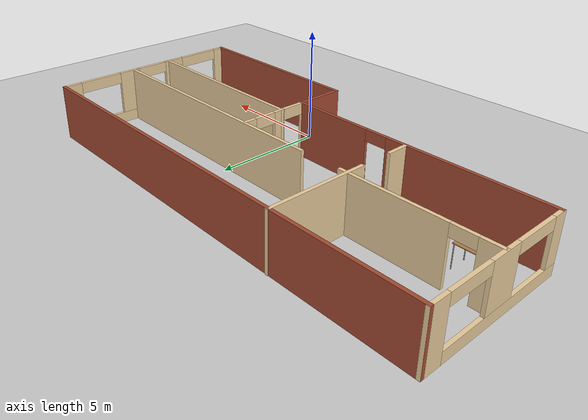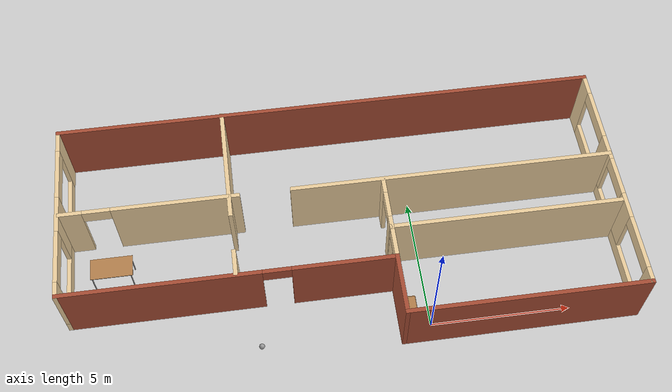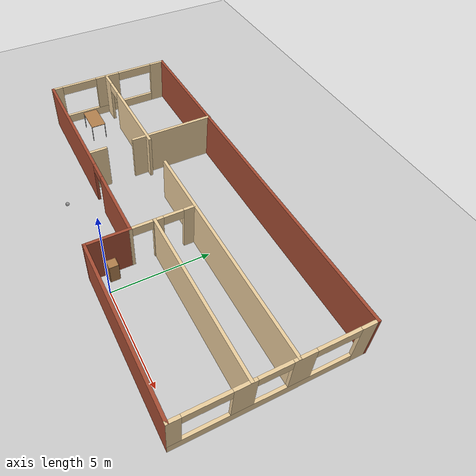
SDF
<sdf version="1.6">
 <world name="default">
  <plugin name="hello" filename="libhello.so"/>
  <light name="sun" type="directional">
   <pose>0 0 10 0 -0 0</pose>
   <diffuse>0.8 0.8 0.8 1</diffuse>
   <specular>0.2 0.2 0.2 1</specular>
   <attenuation>
    <range>1000</range>
    <constant>0.9</constant>
    <linear>0.01</linear>
    <quadratic>0.001</quadratic>
   </attenuation>
   <direction>-0.5 0.1 -0.9</direction>
  </light>
  <model name="ground_plane">
   <static>1</static>
   <link name="link">
    <collision name="collision">
     <geometry><plane><normal>0 0 1</normal><size>100 100</size></plane></geometry>
     <surface>
      <contact><collide_bitmask>65535</collide_bitmask></contact>
      <friction><ode><mu>100</mu><mu2>50</mu2></ode></friction>
     </surface>
    </collision>
    <visual name="visual">
     <cast_shadows>0</cast_shadows>
     <geometry><plane><normal>0 0 1</normal><size>100 100</size></plane></geometry>
     <material>
      <script><uri>file://media/materials/scripts/gazebo.material</uri><name>Gazebo/Grey</name></script>
     </material>
    </visual>
   </link>
  </model>
  <gravity>0 0 -9.8</gravity>
  <magnetic_field>6e-06 2.3e-05 -4.2e-05</magnetic_field>
  <atmosphere type="adiabatic"/>
  <physics name="default_physics" default="0" type="ode">
   <max_step_size>0.001</max_step_size>
   <real_time_factor>1</real_time_factor>
   <real_time_update_rate>1000</real_time_update_rate>
  </physics>
  <scene><ambient>0.4 0.4 0.4 1</ambient><background>0.7 0.7 0.7 1</background><shadows>1</shadows></scene>
  <spherical_coordinates>
   <surface_model>EARTH_WGS84</surface_model>
   <latitude_deg>0</latitude_deg>
   <longitude_deg>0</longitude_deg>
   <elevation>0</elevation>
   <heading_deg>0</heading_deg>
  </spherical_coordinates>
  <model name="linkoping_apt">
   <pose>-2.6595 3.91449 0 0 -0 0</pose>
   <link name="Wall_1">
    <collision name="Wall_1_Collision">
     <geometry><box><size>20.0535 0.15 2.5</size></box></geometry>
     <pose>0 0 1.25 0 -0 0</pose>
    </collision>
    <visual name="Wall_1_Visual">
     <pose>0 0 1.25 0 -0 0</pose>
     <geometry><box><size>20.0535 0.15 2.5</size></box></geometry>
     <material>
      <script><uri>file://media/materials/scripts/gazebo.material</uri><name>Gazebo/Bricks</name></script>
      <ambient>1 1 1 1</ambient>
     </material>
     <meta><layer>0</layer></meta>
    </visual>
    <pose>0 4.41151 0 0 -0 0</pose>
   </link>
   <link name="Wall_10">
    <pose>-4.175 -2.33849 0 0 -0 3.14159</pose>
    <visual name="Wall_10_Visual_0">
     <pose>-4.00063 0 1.25 0 -0 0</pose>
     <geometry><box><size>3.70174 0.15 2.5</size></box></geometry>
     <material>
      <script><uri>file://media/materials/scripts/gazebo.material</uri><name>Gazebo/Bricks</name></script>
      <ambient>1 1 1 1</ambient>
     </material>
     <meta><layer>0</layer></meta>
    </visual>
    <collision name="Wall_10_Collision_0">
     <geometry><box><size>3.70174 0.15 2.5</size></box></geometry>
     <pose>-4.00063 0 1.25 0 -0 0</pose>
    </collision>
    <visual name="Wall_10_Visual_1">
     <pose>2.35087 0 1.25 0 -0 0</pose>
     <geometry><box><size>7.00127 0.15 2.5</size></box></geometry>
     <material>
      <script><uri>file://media/materials/scripts/gazebo.material</uri><name>Gazebo/Bricks</name></script>
      <ambient>1 1 1 1</ambient>
     </material>
     <meta><layer>0</layer></meta>
    </visual>
    <collision name="Wall_10_Collision_1">
     <geometry><box><size>7.00127 0.15 2.5</size></box></geometry>
     <pose>2.35087 0 1.25 0 -0 0</pose>
    </collision>
    <visual name="Wall_10_Visual_2">
     <pose>-1.64976 0 2.25 0 -0 0</pose>
     <geometry><box><size>1 0.15 0.5</size></box></geometry>
     <material>
      <script><uri>file://media/materials/scripts/gazebo.material</uri><name>Gazebo/Bricks</name></script>
      <ambient>1 1 1 1</ambient>
     </material>
     <meta><layer>0</layer></meta>
    </visual>
    <collision name="Wall_10_Collision_2">
     <geometry><box><size>1 0.15 0.5</size></box></geometry>
     <pose>-1.64976 0 2.25 0 -0 0</pose>
    </collision>
   </link>
   <link name="Wall_14">
    <pose>-9.9515 1.03651 0 0 0 -1.5708</pose>
    <visual name="Wall_14_Visual_0">
     <pose>-3.00833 0 1.25 0 -0 0</pose>
     <geometry><box><size>0.883539 0.15 2.5</size></box></geometry>
     <material>
      <script><uri>file://media/materials/scripts/gazebo.material</uri><name>Gazebo/Grey</name></script>
      <ambient>0.921569 0.807843 0.615686 1</ambient>
     </material>
     <meta><layer>0</layer></meta>
    </visual>
    <collision name="Wall_14_Collision_0">
     <geometry><box><size>0.883539 0.15 2.5</size></box></geometry>
     <pose>-3.00833 0 1.25 0 -0 0</pose>
    </collision>
    <visual name="Wall_14_Visual_1">
     <pose>0.44177 0 0.25 0 -0 0</pose>
     <geometry><box><size>6.01667 0.15 0.5</size></box></geometry>
     <material>
      <script><uri>file://media/materials/scripts/gazebo.material</uri><name>Gazebo/Grey</name></script>
      <ambient>0.921569 0.807843 0.615686 1</ambient>
     </material>
     <meta><layer>0</layer></meta>
    </visual>
    <collision name="Wall_14_Collision_1">
     <geometry><box><size>6.01667 0.15 0.5</size></box></geometry>
     <pose>0.44177 0 0.25 0 -0 0</pose>
    </collision>
    <visual name="Wall_14_Visual_2">
     <pose>0.135848 0 1.5 0 -0 0</pose>
     <geometry><box><size>1.40482 0.15 2</size></box></geometry>
     <material>
      <script><uri>file://media/materials/scripts/gazebo.material</uri><name>Gazebo/Grey</name></script>
      <ambient>0.921569 0.807843 0.615686 1</ambient>
     </material>
     <meta><layer>0</layer></meta>
    </visual>
    <collision name="Wall_14_Collision_2">
     <geometry><box><size>1.40482 0.15 2</size></box></geometry>
     <pose>0.135848 0 1.5 0 -0 0</pose>
    </collision>
    <visual name="Wall_14_Visual_3">
     <pose>3.14418 0 1.5 0 -0 0</pose>
     <geometry><box><size>0.611843 0.15 2</size></box></geometry>
     <material>
      <script><uri>file://media/materials/scripts/gazebo.material</uri><name>Gazebo/Grey</name></script>
      <ambient>0.921569 0.807843 0.615686 1</ambient>
     </material>
     <meta><layer>0</layer></meta>
    </visual>
    <collision name="Wall_14_Collision_3">
     <geometry><box><size>0.611843 0.15 2</size></box></geometry>
     <pose>3.14418 0 1.5 0 -0 0</pose>
    </collision>
    <visual name="Wall_14_Visual_4">
     <pose>-1.56656 0 2.25 0 -0 0</pose>
     <geometry><box><size>2 0.15 0.5</size></box></geometry>
     <material>
      <script><uri>file://media/materials/scripts/gazebo.material</uri><name>Gazebo/Grey</name></script>
      <ambient>0.921569 0.807843 0.615686 1</ambient>
     </material>
     <meta><layer>0</layer></meta>
    </visual>
    <collision name="Wall_14_Collision_4">
     <geometry><box><size>2 0.15 0.5</size></box></geometry>
     <pose>-1.56656 0 2.25 0 -0 0</pose>
    </collision>
    <visual name="Wall_14_Visual_5">
     <pose>1.83826 0 2.25 0 -0 0</pose>
     <geometry><box><size>2 0.15 0.5</size></box></geometry>
     <material>
      <script><uri>file://media/materials/scripts/gazebo.material</uri><name>Gazebo/Grey</name></script>
      <ambient>0.921569 0.807843 0.615686 1</ambient>
     </material>
     <meta><layer>0</layer></meta>
    </visual>
    <collision name="Wall_14_Collision_5">
     <geometry><box><size>2 0.15 0.5</size></box></geometry>
     <pose>1.83826 0 2.25 0 -0 0</pose>
    </collision>
   </link>
   <link name="Wall_16">
    <collision name="Wall_16_Collision">
     <geometry><box><size>11.75 0.15 2.5</size></box></geometry>
     <pose>0 0 1.25 0 -0 0</pose>
    </collision>
    <visual name="Wall_16_Visual">
     <pose>0 0 1.25 0 -0 0</pose>
     <geometry><box><size>11.75 0.15 2.5</size></box></geometry>
     <material>
      <script><uri>file://media/materials/scripts/gazebo.material</uri><name>Gazebo/Grey</name></script>
      <ambient>0.921569 0.807843 0.615686 1</ambient>
     </material>
     <meta><layer>0</layer></meta>
    </visual>
    <pose>4.13865 0.847463 0 0 -0 3.14159</pose>
   </link>
   <link name="Wall_20">
    <pose>1.6015 -0.788489 0 0 -0 1.5708</pose>
    <visual name="Wall_20_Visual_0">
     <pose>-1.54701 0 1.25 0 -0 0</pose>
     <geometry><box><size>0.155982 0.15 2.5</size></box></geometry>
     <material>
      <script><uri>file://media/materials/scripts/gazebo.material</uri><name>Gazebo/Grey</name></script>
      <ambient>0.921569 0.807843 0.615686 1</ambient>
     </material>
     <meta><layer>0</layer></meta>
    </visual>
    <collision name="Wall_20_Collision_0">
     <geometry><box><size>0.155982 0.15 2.5</size></box></geometry>
     <pose>-1.54701 0 1.25 0 -0 0</pose>
    </collision>
    <visual name="Wall_20_Visual_1">
     <pose>-0.211837 0 1.25 0 -0 0</pose>
     <geometry><box><size>0.514362 0.15 2.5</size></box></geometry>
     <material>
      <script><uri>file://media/materials/scripts/gazebo.material</uri><name>Gazebo/Grey</name></script>
      <ambient>0.921569 0.807843 0.615686 1</ambient>
     </material>
     <meta><layer>0</layer></meta>
    </visual>
    <collision name="Wall_20_Collision_1">
     <geometry><box><size>0.514362 0.15 2.5</size></box></geometry>
     <pose>-0.211837 0 1.25 0 -0 0</pose>
    </collision>
    <visual name="Wall_20_Visual_2">
     <pose>1.33517 0 1.25 0 -0 0</pose>
     <geometry><box><size>0.579656 0.15 2.5</size></box></geometry>
     <material>
      <script><uri>file://media/materials/scripts/gazebo.material</uri><name>Gazebo/Grey</name></script>
      <ambient>0.921569 0.807843 0.615686 1</ambient>
     </material>
     <meta><layer>0</layer></meta>
    </visual>
    <collision name="Wall_20_Collision_2">
     <geometry><box><size>0.579656 0.15 2.5</size></box></geometry>
     <pose>1.33517 0 1.25 0 -0 0</pose>
    </collision>
    <visual name="Wall_20_Visual_3">
     <pose>-0.969018 0 2.25 0 -0 0</pose>
     <geometry><box><size>1 0.15 0.5</size></box></geometry>
     <material>
      <script><uri>file://media/materials/scripts/gazebo.material</uri><name>Gazebo/Grey</name></script>
      <ambient>0.921569 0.807843 0.615686 1</ambient>
     </material>
     <meta><layer>0</layer></meta>
    </visual>
    <collision name="Wall_20_Collision_3">
     <geometry><box><size>1 0.15 0.5</size></box></geometry>
     <pose>-0.969018 0 2.25 0 -0 0</pose>
    </collision>
    <visual name="Wall_20_Visual_4">
     <pose>0.545344 0 2.25 0 -0 0</pose>
     <geometry><box><size>1 0.15 0.5</size></box></geometry>
     <material>
      <script><uri>file://media/materials/scripts/gazebo.material</uri><name>Gazebo/Grey</name></script>
      <ambient>0.921569 0.807843 0.615686 1</ambient>
     </material>
     <meta><layer>0</layer></meta>
    </visual>
    <collision name="Wall_20_Collision_4">
     <geometry><box><size>1 0.15 0.5</size></box></geometry>
     <pose>0.545344 0 2.25 0 -0 0</pose>
    </collision>
   </link>
   <link name="Wall_27">
    <collision name="Wall_27_Collision">
     <geometry><box><size>4.5 0.15 2.5</size></box></geometry>
     <pose>0 0 1.25 0 -0 0</pose>
    </collision>
    <visual name="Wall_27_Visual">
     <pose>0 0 1.25 0 -0 0</pose>
     <geometry><box><size>4.5 0.15 2.5</size></box></geometry>
     <material>
      <script><uri>file://media/materials/scripts/gazebo.material</uri><name>Gazebo/Grey</name></script>
      <ambient>0.921569 0.807843 0.615686 1</ambient>
     </material>
     <meta><layer>0</layer></meta>
    </visual>
    <pose>-3.92005 2.26349 0 0 0 -1.5708</pose>
   </link>
   <link name="Wall_37">
    <pose>-6.7765 0.839511 0 0 -0 3.14159</pose>
    <visual name="Wall_37_Visual_0">
     <pose>-0.969918 0 1.25 0 -0 0</pose>
     <geometry><box><size>4.56016 0.15 2.5</size></box></geometry>
     <material>
      <script><uri>file://media/materials/scripts/gazebo.material</uri><name>Gazebo/Grey</name></script>
      <ambient>0.921569 0.807843 0.615686 1</ambient>
     </material>
     <meta><layer>0</layer></meta>
    </visual>
    <collision name="Wall_37_Collision_0">
     <geometry><box><size>4.56016 0.15 2.5</size></box></geometry>
     <pose>-0.969918 0 1.25 0 -0 0</pose>
    </collision>
    <visual name="Wall_37_Visual_1">
     <pose>2.78008 0 1.25 0 -0 0</pose>
     <geometry><box><size>0.939837 0.15 2.5</size></box></geometry>
     <material>
      <script><uri>file://media/materials/scripts/gazebo.material</uri><name>Gazebo/Grey</name></script>
      <ambient>0.921569 0.807843 0.615686 1</ambient>
     </material>
     <meta><layer>0</layer></meta>
    </visual>
    <collision name="Wall_37_Collision_1">
     <geometry><box><size>0.939837 0.15 2.5</size></box></geometry>
     <pose>2.78008 0 1.25 0 -0 0</pose>
    </collision>
    <visual name="Wall_37_Visual_2">
     <pose>1.81016 0 2.25 0 -0 0</pose>
     <geometry><box><size>1 0.15 0.5</size></box></geometry>
     <material>
      <script><uri>file://media/materials/scripts/gazebo.material</uri><name>Gazebo/Grey</name></script>
      <ambient>0.921569 0.807843 0.615686 1</ambient>
     </material>
     <meta><layer>0</layer></meta>
    </visual>
    <collision name="Wall_37_Collision_2">
     <geometry><box><size>1 0.15 0.5</size></box></geometry>
     <pose>1.81016 0 2.25 0 -0 0</pose>
    </collision>
   </link>
   <link name="Wall_39">
    <collision name="Wall_39_Collision">
     <geometry><box><size>1 0.15 2.5</size></box></geometry>
     <pose>0 0 1.25 0 -0 0</pose>
    </collision>
    <visual name="Wall_39_Visual">
     <pose>0 0 1.25 0 -0 0</pose>
     <geometry><box><size>1 0.15 2.5</size></box></geometry>
     <material>
      <script><uri>file://media/materials/scripts/gazebo.material</uri><name>Gazebo/Grey</name></script>
      <ambient>0.921569 0.807843 0.615686 1</ambient>
     </material>
     <meta><layer>0</layer></meta>
    </visual>
    <pose>-3.9205 -1.84549 0 0 0 -1.5708</pose>
   </link>
   <link name="Wall_41">
    <collision name="Wall_41_Collision">
     <geometry><box><size>8.5 0.15 2.5</size></box></geometry>
     <pose>0 0 1.25 0 -0 0</pose>
    </collision>
    <visual name="Wall_41_Visual">
     <pose>0 0 1.25 0 -0 0</pose>
     <geometry><box><size>8.5 0.15 2.5</size></box></geometry>
     <material>
      <script><uri>file://media/materials/scripts/gazebo.material</uri><name>Gazebo/Grey</name></script>
      <ambient>0.921569 0.807843 0.615686 1</ambient>
     </material>
     <meta><layer>0</layer></meta>
    </visual>
    <pose>5.77541 -1.15346 0 0 -0 0</pose>
   </link>
   <link name="Wall_5">
    <pose>9.9515 -0.013489 0 0 0 -1.5708</pose>
    <visual name="Wall_5_Visual_0">
     <pose>-4.06492 0 1.25 0 -0 0</pose>
     <geometry><box><size>0.870155 0.15 2.5</size></box></geometry>
     <material>
      <script><uri>file://media/materials/scripts/gazebo.material</uri><name>Gazebo/Grey</name></script>
      <ambient>0.921569 0.807843 0.615686 1</ambient>
     </material>
     <meta><layer>0</layer></meta>
    </visual>
    <collision name="Wall_5_Collision_0">
     <geometry><box><size>0.870155 0.15 2.5</size></box></geometry>
     <pose>-4.06492 0 1.25 0 -0 0</pose>
    </collision>
    <visual name="Wall_5_Visual_1">
     <pose>0.435078 0 0.25 0 -0 0</pose>
     <geometry><box><size>8.12984 0.15 0.5</size></box></geometry>
     <material>
      <script><uri>file://media/materials/scripts/gazebo.material</uri><name>Gazebo/Grey</name></script>
      <ambient>0.921569 0.807843 0.615686 1</ambient>
     </material>
     <meta><layer>0</layer></meta>
    </visual>
    <collision name="Wall_5_Collision_1">
     <geometry><box><size>8.12984 0.15 0.5</size></box></geometry>
     <pose>0.435078 0 0.25 0 -0 0</pose>
    </collision>
    <visual name="Wall_5_Visual_2">
     <pose>-1.11789 0 1.5 0 -0 0</pose>
     <geometry><box><size>1.02392 0.15 2</size></box></geometry>
     <material>
      <script><uri>file://media/materials/scripts/gazebo.material</uri><name>Gazebo/Grey</name></script>
      <ambient>0.921569 0.807843 0.615686 1</ambient>
     </material>
     <meta><layer>0</layer></meta>
    </visual>
    <collision name="Wall_5_Collision_2">
     <geometry><box><size>1.02392 0.15 2</size></box></geometry>
     <pose>-1.11789 0 1.5 0 -0 0</pose>
    </collision>
    <visual name="Wall_5_Visual_3">
     <pose>1.39192 0 1.5 0 -0 0</pose>
     <geometry><box><size>0.99569 0.15 2</size></box></geometry>
     <material>
      <script><uri>file://media/materials/scripts/gazebo.material</uri><name>Gazebo/Grey</name></script>
      <ambient>0.921569 0.807843 0.615686 1</ambient>
     </material>
     <meta><layer>0</layer></meta>
    </visual>
    <collision name="Wall_5_Collision_3">
     <geometry><box><size>0.99569 0.15 2</size></box></geometry>
     <pose>1.39192 0 1.5 0 -0 0</pose>
    </collision>
    <visual name="Wall_5_Visual_4">
     <pose>4.19488 0 1.5 0 -0 0</pose>
     <geometry><box><size>0.610237 0.15 2</size></box></geometry>
     <material>
      <script><uri>file://media/materials/scripts/gazebo.material</uri><name>Gazebo/Grey</name></script>
      <ambient>0.921569 0.807843 0.615686 1</ambient>
     </material>
     <meta><layer>0</layer></meta>
    </visual>
    <collision name="Wall_5_Collision_4">
     <geometry><box><size>0.610237 0.15 2</size></box></geometry>
     <pose>4.19488 0 1.5 0 -0 0</pose>
    </collision>
    <visual name="Wall_5_Visual_5">
     <pose>-2.62984 0 2.25 0 -0 0</pose>
     <geometry><box><size>2 0.15 0.5</size></box></geometry>
     <material>
      <script><uri>file://media/materials/scripts/gazebo.material</uri><name>Gazebo/Grey</name></script>
      <ambient>0.921569 0.807843 0.615686 1</ambient>
     </material>
     <meta><layer>0</layer></meta>
    </visual>
    <collision name="Wall_5_Collision_5">
     <geometry><box><size>2 0.15 0.5</size></box></geometry>
     <pose>-2.62984 0 2.25 0 -0 0</pose>
    </collision>
    <visual name="Wall_5_Visual_6">
     <pose>0.144073 0 2.25 0 -0 0</pose>
     <geometry><box><size>1.5 0.15 0.5</size></box></geometry>
     <material>
      <script><uri>file://media/materials/scripts/gazebo.material</uri><name>Gazebo/Grey</name></script>
      <ambient>0.921569 0.807843 0.615686 1</ambient>
     </material>
     <meta><layer>0</layer></meta>
    </visual>
    <collision name="Wall_5_Collision_6">
     <geometry><box><size>1.5 0.15 0.5</size></box></geometry>
     <pose>0.144073 0 2.25 0 -0 0</pose>
    </collision>
    <visual name="Wall_5_Visual_7">
     <pose>2.88976 0 2.25 0 -0 0</pose>
     <geometry><box><size>2 0.15 0.5</size></box></geometry>
     <material>
      <script><uri>file://media/materials/scripts/gazebo.material</uri><name>Gazebo/Grey</name></script>
      <ambient>0.921569 0.807843 0.615686 1</ambient>
     </material>
     <meta><layer>0</layer></meta>
    </visual>
    <collision name="Wall_5_Collision_7">
     <geometry><box><size>2 0.15 0.5</size></box></geometry>
     <pose>2.88976 0 2.25 0 -0 0</pose>
    </collision>
   </link>
   <link name="Wall_8">
    <collision name="Wall_8_Collision">
     <geometry><box><size>8.5 0.15 2.5</size></box></geometry>
     <pose>0 0 1.25 0 -0 0</pose>
    </collision>
    <visual name="Wall_8_Visual">
     <pose>0 0 1.25 0 -0 0</pose>
     <geometry><box><size>8.5 0.15 2.5</size></box></geometry>
     <material>
      <script><uri>file://media/materials/scripts/gazebo.material</uri><name>Gazebo/Bricks</name></script>
      <ambient>1 1 1 1</ambient>
     </material>
     <meta><layer>0</layer></meta>
    </visual>
    <pose>5.77644 -4.43844 0 0 -0 3.14158</pose>
   </link>
   <link name="Wall_9">
    <collision name="Wall_9_Collision">
     <geometry><box><size>2.25 0.15 2.5</size></box></geometry>
     <pose>0 0 1.25 0 -0 0</pose>
    </collision>
    <visual name="Wall_9_Visual">
     <pose>0 0 1.25 0 -0 0</pose>
     <geometry><box><size>2.25 0.15 2.5</size></box></geometry>
     <material>
      <script><uri>file://media/materials/scripts/gazebo.material</uri><name>Gazebo/Bricks</name></script>
      <ambient>1 1 1 1</ambient>
     </material>
     <meta><layer>0</layer></meta>
    </visual>
    <pose>1.60144 -3.38844 0 0 -0 1.57074</pose>
   </link>
   <static>1</static>
  </model>
  <model name="table">
   <static>1</static>
   <link name="link">
    <collision name="surface">
     <pose>0 0 1 0 -0 0</pose>
     <geometry><box><size>1.5 0.8 0.03</size></box></geometry>
     <surface><friction><ode><mu>0.6</mu><mu2>0.6</mu2></ode></friction></surface>
    </collision>
    <visual name="visual1">
     <pose>0 0 1 0 -0 0</pose>
     <geometry><box><size>1.5 0.8 0.03</size></box></geometry>
     <material>
      <script><uri>file://media/materials/scripts/gazebo.material</uri><name>Gazebo/Wood</name></script>
     </material>
    </visual>
    <collision name="front_left_leg">
     <pose>0.68 0.38 0.5 0 -0 0</pose>
     <geometry><cylinder><radius>0.02</radius><length>1</length></cylinder></geometry>
    </collision>
    <visual name="front_left_leg">
     <pose>0.68 0.38 0.5 0 -0 0</pose>
     <geometry><cylinder><radius>0.02</radius><length>1</length></cylinder></geometry>
     <material>
      <script><uri>file://media/materials/scripts/gazebo.material</uri><name>Gazebo/Grey</name></script>
     </material>
    </visual>
    <collision name="front_right_leg">
     <pose>0.68 -0.38 0.5 0 -0 0</pose>
     <geometry><cylinder><radius>0.02</radius><length>1</length></cylinder></geometry>
    </collision>
    <visual name="front_right_leg">
     <pose>0.68 -0.38 0.5 0 -0 0</pose>
     <geometry><cylinder><radius>0.02</radius><length>1</length></cylinder></geometry>
     <material>
      <script><uri>file://media/materials/scripts/gazebo.material</uri><name>Gazebo/Grey</name></script>
     </material>
    </visual>
    <collision name="back_right_leg">
     <pose>-0.68 -0.38 0.5 0 -0 0</pose>
     <geometry><cylinder><radius>0.02</radius><length>1</length></cylinder></geometry>
    </collision>
    <visual name="back_right_leg">
     <pose>-0.68 -0.38 0.5 0 -0 0</pose>
     <geometry><cylinder><radius>0.02</radius><length>1</length></cylinder></geometry>
     <material>
      <script><uri>file://media/materials/scripts/gazebo.material</uri><name>Gazebo/Grey</name></script>
     </material>
    </visual>
    <collision name="back_left_leg">
     <pose>-0.68 0.38 0.5 0 -0 0</pose>
     <geometry><cylinder><radius>0.02</radius><length>1</length></cylinder></geometry>
    </collision>
    <visual name="back_left_leg">
     <pose>-0.68 0.38 0.5 0 -0 0</pose>
     <geometry><cylinder><radius>0.02</radius><length>1</length></cylinder></geometry>
     <material>
      <script><uri>file://media/materials/scripts/gazebo.material</uri><name>Gazebo/Grey</name></script>
     </material>
    </visual>
   </link>
   <pose>-11.0041 3.26553 0 0 -0 0</pose>
  </model>
  <model name="cabinet">
   <static>1</static>
   <link name="cabinet_bottom_plate">
    <inertial>
     <pose>0 0 -1 0 -0 0</pose>
     <inertia><ixx>2.05</ixx><ixy>0</ixy><ixz>0</ixz><iyy>2.05</iyy><iyz>0</iyz><izz>2.05</izz></inertia>
     <mass>25</mass>
    </inertial>
    <collision name="cabinet_bottom_plate_geom">
     <pose>0 0 0.01 0 -0 0</pose>
     <geometry><box><size>0.45 0.45 0.02</size></box></geometry>
    </collision>
    <visual name="cabinet_bottom_plate_geom_visual">
     <pose>0 0 0.01 0 -0 0</pose>
     <geometry><box><size>0.45 0.45 0.02</size></box></geometry>
     <material>
      <script><uri>file://media/materials/scripts/gazebo.material</uri><name>Gazebo/Wood</name></script>
     </material>
    </visual>
    <collision name="cabinet_bottom_plate_geom_cabinet_back_plate">
     <pose>0.235 0 0.51 0 -0 0</pose>
     <geometry><box><size>0.02 0.45 1.02</size></box></geometry>
    </collision>
    <visual name="cabinet_bottom_plate_geom_cabinet_back_plate_visual">
     <pose>0.235 0 0.51 0 -0 0</pose>
     <geometry><box><size>0.02 0.45 1.02</size></box></geometry>
     <material>
      <script><uri>file://media/materials/scripts/gazebo.material</uri><name>Gazebo/Wood</name></script>
     </material>
    </visual>
    <collision name="cabinet_bottom_plate_geom_cabinet_left_plate">
     <pose>0 0.235 0.51 0 -0 0</pose>
     <geometry><box><size>0.45 0.02 1.02</size></box></geometry>
    </collision>
    <visual name="cabinet_bottom_plate_geom_cabinet_left_plate_visual">
     <pose>0 0.235 0.51 0 -0 0</pose>
     <geometry><box><size>0.45 0.02 1.02</size></box></geometry>
     <material>
      <script><uri>file://media/materials/scripts/gazebo.material</uri><name>Gazebo/Wood</name></script>
     </material>
    </visual>
    <collision name="cabinet_bottom_plate_geom_cabinet_middle_plate">
     <pose>0 0 0.51 0 -0 0</pose>
     <geometry><box><size>0.45 0.45 0.02</size></box></geometry>
    </collision>
    <visual name="cabinet_bottom_plate_geom_cabinet_middle_plate_visual">
     <pose>0 0 0.51 0 -0 0</pose>
     <geometry><box><size>0.45 0.45 0.02</size></box></geometry>
     <material>
      <script><uri>file://media/materials/scripts/gazebo.material</uri><name>Gazebo/Wood</name></script>
     </material>
    </visual>
    <collision name="cabinet_bottom_plate_geom_cabinet_right_plate">
     <pose>0 -0.235 0.51 0 -0 0</pose>
     <geometry><box><size>0.45 0.02 1.02</size></box></geometry>
    </collision>
    <visual name="cabinet_bottom_plate_geom_cabinet_right_plate_visual">
     <pose>0 -0.235 0.51 0 -0 0</pose>
     <geometry><box><size>0.45 0.02 1.02</size></box></geometry>
     <material>
      <script><uri>file://media/materials/scripts/gazebo.material</uri><name>Gazebo/Wood</name></script>
     </material>
    </visual>
    <collision name="cabinet_bottom_plate_geom_cabinet_top_plate">
     <pose>0 0 1.01 0 -0 0</pose>
     <geometry><box><size>0.45 0.45 0.02</size></box></geometry>
    </collision>
    <visual name="cabinet_bottom_plate_geom_cabinet_top_plate_visual">
     <pose>0 0 1.01 0 -0 0</pose>
     <geometry><box><size>0.45 0.45 0.02</size></box></geometry>
     <material>
      <script><uri>file://media/materials/scripts/gazebo.material</uri><name>Gazebo/Wood</name></script>
     </material>
    </visual>
   </link>
   <pose>-0.750979 0.477668 0 0 -0 0</pose>
  </model>
  <model name="my_ball">
   <link name="link_0">
    <inertial>
     <mass>1</mass>
     <inertia><ixx>0.1</ixx><ixy>0</ixy><ixz>0</ixz><iyy>0.1</iyy><iyz>0</iyz><izz>0.1</izz></inertia>
    </inertial>
    <visual name="visual">
     <geometry><sphere><radius>0.1</radius></sphere></geometry>
     <material>
      <lighting>1</lighting>
      <script><uri>file://media/materials/scripts/gazebo.material</uri><name>Gazebo/Grey</name></script>
      <shader type="pixel"><normal_map>__default__</normal_map></shader>
      <ambient>1 1 1 1</ambient>
      <diffuse>1 1 1 1</diffuse>
      <specular>1 1 1 1</specular>
      <emissive>1 1 1 1</emissive>
     </material>
    </visual>
    <collision name="collision">
     <geometry><sphere><radius>0.1</radius></sphere></geometry>
     <surface>
      <friction>
       <ode><mu>1</mu><mu2>1</mu2><fdir1>0 0 0</fdir1><slip1>0</slip1><slip2>0</slip2></ode>
       <torsional>
        <coefficient>1</coefficient>
        <patch_radius>0</patch_radius>
        <surface_radius>0</surface_radius>
        <use_patch_radius>1</use_patch_radius>
        <ode><slip>0</slip></ode>
       </torsional>
      </friction>
      <bounce><restitution_coefficient>0</restitution_coefficient><threshold>1e+06</threshold></bounce>
      <contact>
       <collide_without_contact>0</collide_without_contact>
       <collide_without_contact_bitmask>1</collide_without_contact_bitmask>
       <collide_bitmask>1</collide_bitmask>
       <ode>
        <soft_cfm>0</soft_cfm>
        <soft_erp>0.2</soft_erp>
        <kp>1e+13</kp>
        <kd>1</kd>
        <max_vel>0.01</max_vel>
        <min_depth>0</min_depth>
       </ode>
       <bullet>
        <split_impulse>1</split_impulse>
        <split_impulse_penetration_threshold>-0.01</split_impulse_penetration_threshold>
        <soft_cfm>0</soft_cfm>
        <soft_erp>0.2</soft_erp>
        <kp>1e+13</kp>
        <kd>1</kd>
       </bullet>
      </contact>
     </surface>
    </collision>
   </link>
   <static>0</static>
   <pose>-6.00214 -0.070907 0.1 0 -0 0</pose>
  </model>
 </world>
</sdf>
